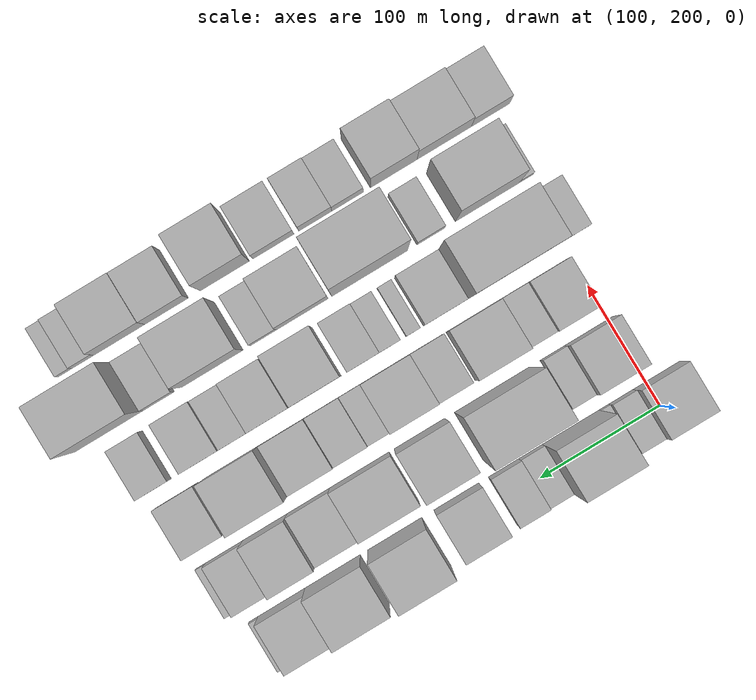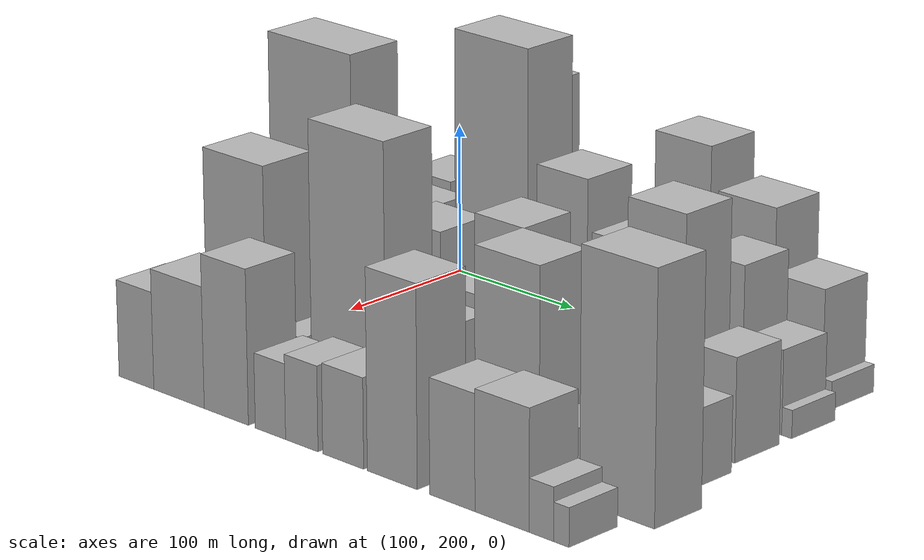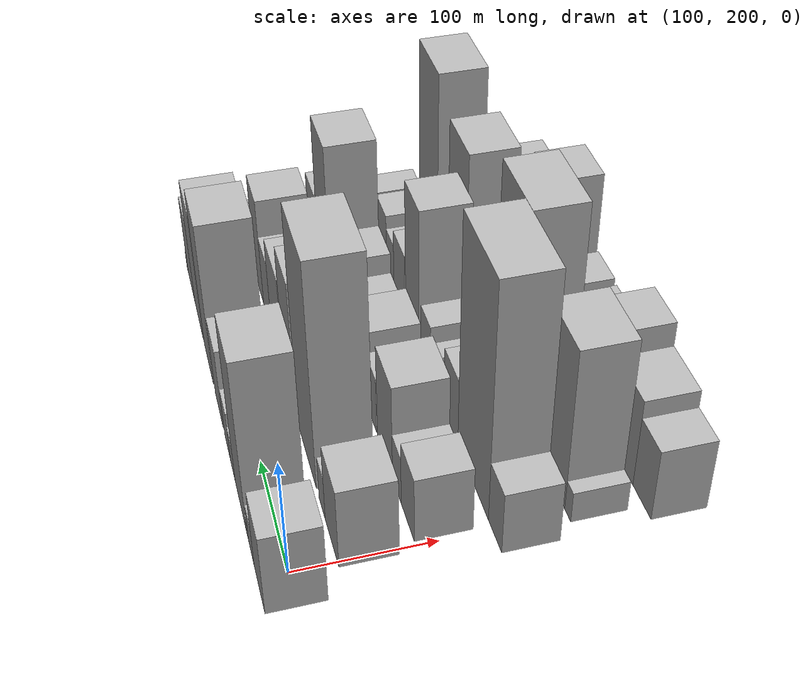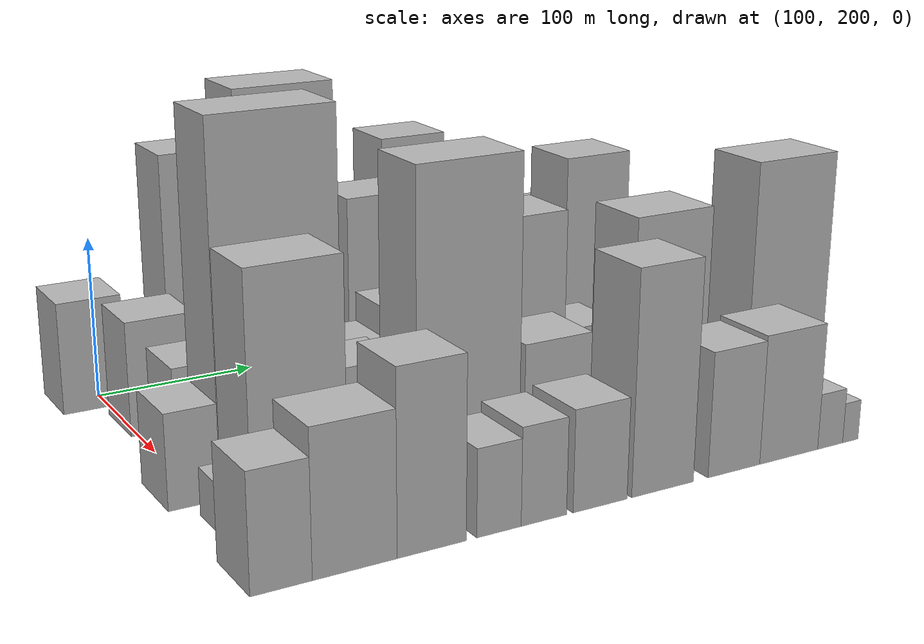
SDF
<sdf version="1.6">
 <world name="default">
  <model name="building_29">
   <static>1</static>
   <pose>100.0000 191.5343 0 0.000000 0.000000 0.000000</pose>
   <link name="link">
    <pose>0 0 34.50 0 0 0</pose>
    <collision name="collision"><geometry><box><size>40.0000 39.0017 69.0000</size></box></geometry></collision>
    <visual name="visual">
     <cast_shadows>0</cast_shadows>
     <geometry><box><size>40.0000 39.0017 69.0000</size></box></geometry>
     <material>
      <script>
       <uri>model://HANNAS_wall/materials/scripts</uri>
       <uri>model://HANNAS_wall/materials/textures</uri>
       <name>vrc/HANNAS_wall</name>
      </script>
     </material>
    </visual>
   </link>
  </model>
  <model name="building_30">
   <static>1</static>
   <pose>100.0000 221.0923 0 0.000000 0.000000 0.000000</pose>
   <link name="link">
    <pose>0 0 18.00 0 0 0</pose>
    <collision name="collision"><geometry><box><size>40.0000 20.1144 36.0000</size></box></geometry></collision>
    <visual name="visual">
     <cast_shadows>0</cast_shadows>
     <geometry><box><size>40.0000 20.1144 36.0000</size></box></geometry>
     <material>
      <script>
       <uri>model://HANNAS_wall/materials/scripts</uri>
       <uri>model://HANNAS_wall/materials/textures</uri>
       <name>vrc/HANNAS_wall</name>
      </script>
     </material>
    </visual>
   </link>
  </model>
  <model name="building_31">
   <static>1</static>
   <pose>100.0000 235.1445 0 0.000000 0.000000 0.000000</pose>
   <link name="link">
    <pose>0 0 9.00 0 0 0</pose>
    <collision name="collision"><geometry><box><size>40.0000 7.9899 18.0000</size></box></geometry></collision>
    <visual name="visual">
     <cast_shadows>0</cast_shadows>
     <geometry><box><size>40.0000 7.9899 18.0000</size></box></geometry>
     <material>
      <script>
       <uri>model://HANNAS_wall/materials/scripts</uri>
       <uri>model://HANNAS_wall/materials/textures</uri>
       <name>vrc/HANNAS_wall</name>
      </script>
     </material>
    </visual>
   </link>
  </model>
  <model name="building_32">
   <static>1</static>
   <pose>100.0000 262.7844 0 0.000000 0.000000 0.000000</pose>
   <link name="link">
    <pose>0 0 75.00 0 0 0</pose>
    <collision name="collision"><geometry><box><size>40.0000 47.2899 150.0000</size></box></geometry></collision>
    <visual name="visual">
     <cast_shadows>0</cast_shadows>
     <geometry><box><size>40.0000 47.2899 150.0000</size></box></geometry>
     <material>
      <script>
       <uri>model://HANNAS_wall/materials/scripts</uri>
       <uri>model://HANNAS_wall/materials/textures</uri>
       <name>vrc/HANNAS_wall</name>
      </script>
     </material>
    </visual>
   </link>
  </model>
  <model name="building_33">
   <static>1</static>
   <pose>100.0000 296.3072 0 0.000000 0.000000 0.000000</pose>
   <link name="link">
    <pose>0 0 16.50 0 0 0</pose>
    <collision name="collision"><geometry><box><size>40.0000 19.7557 33.0000</size></box></geometry></collision>
    <visual name="visual">
     <cast_shadows>0</cast_shadows>
     <geometry><box><size>40.0000 19.7557 33.0000</size></box></geometry>
     <material>
      <script>
       <uri>model://HANNAS_wall/materials/scripts</uri>
       <uri>model://HANNAS_wall/materials/textures</uri>
       <name>vrc/HANNAS_wall</name>
      </script>
     </material>
    </visual>
   </link>
  </model>
  <model name="building_34">
   <static>1</static>
   <pose>100.0000 318.8249 0 0.000000 0.000000 0.000000</pose>
   <link name="link">
    <pose>0 0 22.50 0 0 0</pose>
    <collision name="collision"><geometry><box><size>40.0000 25.2797 45.0000</size></box></geometry></collision>
    <visual name="visual">
     <cast_shadows>0</cast_shadows>
     <geometry><box><size>40.0000 25.2797 45.0000</size></box></geometry>
     <material>
      <script>
       <uri>model://HANNAS_wall/materials/scripts</uri>
       <uri>model://HANNAS_wall/materials/textures</uri>
       <name>vrc/HANNAS_wall</name>
      </script>
     </material>
    </visual>
   </link>
  </model>
  <model name="building_35">
   <static>1</static>
   <pose>100.0000 358.1424 0 0.000000 0.000000 0.000000</pose>
   <link name="link">
    <pose>0 0 36.00 0 0 0</pose>
    <collision name="collision"><geometry><box><size>40.0000 37.3553 72.0000</size></box></geometry></collision>
    <visual name="visual">
     <cast_shadows>0</cast_shadows>
     <geometry><box><size>40.0000 37.3553 72.0000</size></box></geometry>
     <material>
      <script>
       <uri>model://HANNAS_wall/materials/scripts</uri>
       <uri>model://HANNAS_wall/materials/textures</uri>
       <name>vrc/HANNAS_wall</name>
      </script>
     </material>
    </visual>
   </link>
  </model>
  <model name="building_36">
   <static>1</static>
   <pose>100.0000 409.5128 0 0.000000 0.000000 0.000000</pose>
   <link name="link">
    <pose>0 0 72.00 0 0 0</pose>
    <collision name="collision"><geometry><box><size>40.0000 45.3855 144.0000</size></box></geometry></collision>
    <visual name="visual">
     <cast_shadows>0</cast_shadows>
     <geometry><box><size>40.0000 45.3855 144.0000</size></box></geometry>
     <material>
      <script>
       <uri>model://HANNAS_wall/materials/scripts</uri>
       <uri>model://HANNAS_wall/materials/textures</uri>
       <name>vrc/HANNAS_wall</name>
      </script>
     </material>
    </visual>
   </link>
  </model>
  <model name="building_37">
   <static>1</static>
   <pose>100.0000 461.2926 0 0.000000 0.000000 0.000000</pose>
   <link name="link">
    <pose>0 0 58.50 0 0 0</pose>
    <collision name="collision"><geometry><box><size>40.0000 46.1740 117.0000</size></box></geometry></collision>
    <visual name="visual">
     <cast_shadows>0</cast_shadows>
     <geometry><box><size>40.0000 46.1740 117.0000</size></box></geometry>
     <material>
      <script>
       <uri>model://HANNAS_wall/materials/scripts</uri>
       <uri>model://HANNAS_wall/materials/textures</uri>
       <name>vrc/HANNAS_wall</name>
      </script>
     </material>
    </visual>
   </link>
  </model>
  <model name="building_38">
   <static>1</static>
   <pose>100.0000 503.9685 0 0.000000 0.000000 0.000000</pose>
   <link name="link">
    <pose>0 0 37.50 0 0 0</pose>
    <collision name="collision"><geometry><box><size>40.0000 39.1779 75.0000</size></box></geometry></collision>
    <visual name="visual">
     <cast_shadows>0</cast_shadows>
     <geometry><box><size>40.0000 39.1779 75.0000</size></box></geometry>
     <material>
      <script>
       <uri>model://HANNAS_wall/materials/scripts</uri>
       <uri>model://HANNAS_wall/materials/textures</uri>
       <name>vrc/HANNAS_wall</name>
      </script>
     </material>
    </visual>
   </link>
  </model>
  <model name="building_39">
   <static>1</static>
   <pose>100.0000 527.1681 0 0.000000 0.000000 0.000000</pose>
   <link name="link">
    <pose>0 0 9.00 0 0 0</pose>
    <collision name="collision"><geometry><box><size>40.0000 7.2214 18.0000</size></box></geometry></collision>
    <visual name="visual">
     <cast_shadows>0</cast_shadows>
     <geometry><box><size>40.0000 7.2214 18.0000</size></box></geometry>
     <material>
      <script>
       <uri>model://HANNAS_wall/materials/scripts</uri>
       <uri>model://HANNAS_wall/materials/textures</uri>
       <name>vrc/HANNAS_wall</name>
      </script>
     </material>
    </visual>
   </link>
  </model>
  <model name="building_81">
   <static>1</static>
   <pose>152.0000 216.3710 0 0.000000 0.000000 0.000000</pose>
   <link name="link">
    <pose>0 0 34.50 0 0 0</pose>
    <collision name="collision"><geometry><box><size>40.0000 41.2310 69.0000</size></box></geometry></collision>
    <visual name="visual">
     <cast_shadows>0</cast_shadows>
     <geometry><box><size>40.0000 41.2310 69.0000</size></box></geometry>
     <material>
      <script>
       <uri>model://HANNAS_wall/materials/scripts</uri>
       <uri>model://HANNAS_wall/materials/textures</uri>
       <name>vrc/HANNAS_wall</name>
      </script>
     </material>
    </visual>
   </link>
  </model>
  <model name="building_82">
   <static>1</static>
   <pose>152.0000 246.8909 0 0.000000 0.000000 0.000000</pose>
   <link name="link">
    <pose>0 0 19.50 0 0 0</pose>
    <collision name="collision"><geometry><box><size>40.0000 19.8089 39.0000</size></box></geometry></collision>
    <visual name="visual">
     <cast_shadows>0</cast_shadows>
     <geometry><box><size>40.0000 19.8089 39.0000</size></box></geometry>
     <material>
      <script>
       <uri>model://HANNAS_wall/materials/scripts</uri>
       <uri>model://HANNAS_wall/materials/textures</uri>
       <name>vrc/HANNAS_wall</name>
      </script>
     </material>
    </visual>
   </link>
  </model>
  <model name="building_83">
   <static>1</static>
   <pose>152.0000 297.0358 0 0.000000 0.000000 0.000000</pose>
   <link name="link">
    <pose>0 0 97.50 0 0 0</pose>
    <collision name="collision"><geometry><box><size>40.0000 62.4808 195.0000</size></box></geometry></collision>
    <visual name="visual">
     <cast_shadows>0</cast_shadows>
     <geometry><box><size>40.0000 62.4808 195.0000</size></box></geometry>
     <material>
      <script>
       <uri>model://HANNAS_wall/materials/scripts</uri>
       <uri>model://HANNAS_wall/materials/textures</uri>
       <name>vrc/HANNAS_wall</name>
      </script>
     </material>
    </visual>
   </link>
  </model>
  <model name="building_84">
   <static>1</static>
   <pose>152.0000 357.4031 0 0.000000 0.000000 0.000000</pose>
   <link name="link">
    <pose>0 0 61.50 0 0 0</pose>
    <collision name="collision"><geometry><box><size>40.0000 42.2539 123.0000</size></box></geometry></collision>
    <visual name="visual">
     <cast_shadows>0</cast_shadows>
     <geometry><box><size>40.0000 42.2539 123.0000</size></box></geometry>
     <material>
      <script>
       <uri>model://HANNAS_wall/materials/scripts</uri>
       <uri>model://HANNAS_wall/materials/textures</uri>
       <name>vrc/HANNAS_wall</name>
      </script>
     </material>
    </visual>
   </link>
  </model>
  <model name="building_85">
   <static>1</static>
   <pose>152.0000 407.4647 0 0.000000 0.000000 0.000000</pose>
   <link name="link">
    <pose>0 0 45.00 0 0 0</pose>
    <collision name="collision"><geometry><box><size>40.0000 49.8692 90.0000</size></box></geometry></collision>
    <visual name="visual">
     <cast_shadows>0</cast_shadows>
     <geometry><box><size>40.0000 49.8692 90.0000</size></box></geometry>
     <material>
      <script>
       <uri>model://HANNAS_wall/materials/scripts</uri>
       <uri>model://HANNAS_wall/materials/textures</uri>
       <name>vrc/HANNAS_wall</name>
      </script>
     </material>
    </visual>
   </link>
  </model>
  <model name="building_86">
   <static>1</static>
   <pose>152.0000 450.0559 0 0.000000 0.000000 0.000000</pose>
   <link name="link">
    <pose>0 0 33.00 0 0 0</pose>
    <collision name="collision"><geometry><box><size>40.0000 35.3134 66.0000</size></box></geometry></collision>
    <visual name="visual">
     <cast_shadows>0</cast_shadows>
     <geometry><box><size>40.0000 35.3134 66.0000</size></box></geometry>
     <material>
      <script>
       <uri>model://HANNAS_wall/materials/scripts</uri>
       <uri>model://HANNAS_wall/materials/textures</uri>
       <name>vrc/HANNAS_wall</name>
      </script>
     </material>
    </visual>
   </link>
  </model>
  <model name="building_87">
   <static>1</static>
   <pose>152.0000 486.1059 0 0.000000 0.000000 0.000000</pose>
   <link name="link">
    <pose>0 0 49.50 0 0 0</pose>
    <collision name="collision"><geometry><box><size>40.0000 36.7866 99.0000</size></box></geometry></collision>
    <visual name="visual">
     <cast_shadows>0</cast_shadows>
     <geometry><box><size>40.0000 36.7866 99.0000</size></box></geometry>
     <material>
      <script>
       <uri>model://HANNAS_wall/materials/scripts</uri>
       <uri>model://HANNAS_wall/materials/textures</uri>
       <name>vrc/HANNAS_wall</name>
      </script>
     </material>
    </visual>
   </link>
  </model>
  <model name="building_88">
   <static>1</static>
   <pose>152.0000 520.0396 0 0.000000 0.000000 0.000000</pose>
   <link name="link">
    <pose>0 0 27.00 0 0 0</pose>
    <collision name="collision"><geometry><box><size>40.0000 31.0809 54.0000</size></box></geometry></collision>
    <visual name="visual">
     <cast_shadows>0</cast_shadows>
     <geometry><box><size>40.0000 31.0809 54.0000</size></box></geometry>
     <material>
      <script>
       <uri>model://HANNAS_wall/materials/scripts</uri>
       <uri>model://HANNAS_wall/materials/textures</uri>
       <name>vrc/HANNAS_wall</name>
      </script>
     </material>
    </visual>
   </link>
  </model>
  <model name="building_89">
   <static>1</static>
   <pose>152.0000 539.5074 0 0.000000 0.000000 0.000000</pose>
   <link name="link">
    <pose>0 0 9.00 0 0 0</pose>
    <collision name="collision"><geometry><box><size>40.0000 7.8546 18.0000</size></box></geometry></collision>
    <visual name="visual">
     <cast_shadows>0</cast_shadows>
     <geometry><box><size>40.0000 7.8546 18.0000</size></box></geometry>
     <material>
      <script>
       <uri>model://HANNAS_wall/materials/scripts</uri>
       <uri>model://HANNAS_wall/materials/textures</uri>
       <name>vrc/HANNAS_wall</name>
      </script>
     </material>
    </visual>
   </link>
  </model>
  <model name="building_130">
   <static>1</static>
   <pose>204.0000 220.5026 0 0.000000 0.000000 0.000000</pose>
   <link name="link">
    <pose>0 0 28.50 0 0 0</pose>
    <collision name="collision"><geometry><box><size>40.0000 33.9036 57.0000</size></box></geometry></collision>
    <visual name="visual">
     <cast_shadows>0</cast_shadows>
     <geometry><box><size>40.0000 33.9036 57.0000</size></box></geometry>
     <material>
      <script>
       <uri>model://HANNAS_wall/materials/scripts</uri>
       <uri>model://HANNAS_wall/materials/textures</uri>
       <name>vrc/HANNAS_wall</name>
      </script>
     </material>
    </visual>
   </link>
  </model>
  <model name="building_131">
   <static>1</static>
   <pose>204.0000 249.2107 0 0.000000 0.000000 0.000000</pose>
   <link name="link">
    <pose>0 0 21.00 0 0 0</pose>
    <collision name="collision"><geometry><box><size>40.0000 23.5128 42.0000</size></box></geometry></collision>
    <visual name="visual">
     <cast_shadows>0</cast_shadows>
     <geometry><box><size>40.0000 23.5128 42.0000</size></box></geometry>
     <material>
      <script>
       <uri>model://HANNAS_wall/materials/scripts</uri>
       <uri>model://HANNAS_wall/materials/textures</uri>
       <name>vrc/HANNAS_wall</name>
      </script>
     </material>
    </visual>
   </link>
  </model>
  <model name="building_132">
   <static>1</static>
   <pose>204.0000 282.3592 0 0.000000 0.000000 0.000000</pose>
   <link name="link">
    <pose>0 0 42.00 0 0 0</pose>
    <collision name="collision"><geometry><box><size>40.0000 42.7842 84.0000</size></box></geometry></collision>
    <visual name="visual">
     <cast_shadows>0</cast_shadows>
     <geometry><box><size>40.0000 42.7842 84.0000</size></box></geometry>
     <material>
      <script>
       <uri>model://HANNAS_wall/materials/scripts</uri>
       <uri>model://HANNAS_wall/materials/textures</uri>
       <name>vrc/HANNAS_wall</name>
      </script>
     </material>
    </visual>
   </link>
  </model>
  <model name="building_133">
   <static>1</static>
   <pose>204.0000 320.8927 0 0.000000 0.000000 0.000000</pose>
   <link name="link">
    <pose>0 0 25.50 0 0 0</pose>
    <collision name="collision"><geometry><box><size>40.0000 28.2828 51.0000</size></box></geometry></collision>
    <visual name="visual">
     <cast_shadows>0</cast_shadows>
     <geometry><box><size>40.0000 28.2828 51.0000</size></box></geometry>
     <material>
      <script>
       <uri>model://HANNAS_wall/materials/scripts</uri>
       <uri>model://HANNAS_wall/materials/textures</uri>
       <name>vrc/HANNAS_wall</name>
      </script>
     </material>
    </visual>
   </link>
  </model>
  <model name="building_134">
   <static>1</static>
   <pose>204.0000 355.1964 0 0.000000 0.000000 0.000000</pose>
   <link name="link">
    <pose>0 0 34.50 0 0 0</pose>
    <collision name="collision"><geometry><box><size>40.0000 40.3246 69.0000</size></box></geometry></collision>
    <visual name="visual">
     <cast_shadows>0</cast_shadows>
     <geometry><box><size>40.0000 40.3246 69.0000</size></box></geometry>
     <material>
      <script>
       <uri>model://HANNAS_wall/materials/scripts</uri>
       <uri>model://HANNAS_wall/materials/textures</uri>
       <name>vrc/HANNAS_wall</name>
      </script>
     </material>
    </visual>
   </link>
  </model>
  <model name="building_135">
   <static>1</static>
   <pose>204.0000 384.3293 0 0.000000 0.000000 0.000000</pose>
   <link name="link">
    <pose>0 0 16.50 0 0 0</pose>
    <collision name="collision"><geometry><box><size>40.0000 17.9412 33.0000</size></box></geometry></collision>
    <visual name="visual">
     <cast_shadows>0</cast_shadows>
     <geometry><box><size>40.0000 17.9412 33.0000</size></box></geometry>
     <material>
      <script>
       <uri>model://HANNAS_wall/materials/scripts</uri>
       <uri>model://HANNAS_wall/materials/textures</uri>
       <name>vrc/HANNAS_wall</name>
      </script>
     </material>
    </visual>
   </link>
  </model>
  <model name="building_136">
   <static>1</static>
   <pose>204.0000 407.4024 0 0.000000 0.000000 0.000000</pose>
   <link name="link">
    <pose>0 0 24.00 0 0 0</pose>
    <collision name="collision"><geometry><box><size>40.0000 28.2051 48.0000</size></box></geometry></collision>
    <visual name="visual">
     <cast_shadows>0</cast_shadows>
     <geometry><box><size>40.0000 28.2051 48.0000</size></box></geometry>
     <material>
      <script>
       <uri>model://HANNAS_wall/materials/scripts</uri>
       <uri>model://HANNAS_wall/materials/textures</uri>
       <name>vrc/HANNAS_wall</name>
      </script>
     </material>
    </visual>
   </link>
  </model>
  <model name="building_137">
   <static>1</static>
   <pose>204.0000 439.9204 0 0.000000 0.000000 0.000000</pose>
   <link name="link">
    <pose>0 0 33.00 0 0 0</pose>
    <collision name="collision"><geometry><box><size>40.0000 36.8308 66.0000</size></box></geometry></collision>
    <visual name="visual">
     <cast_shadows>0</cast_shadows>
     <geometry><box><size>40.0000 36.8308 66.0000</size></box></geometry>
     <material>
      <script>
       <uri>model://HANNAS_wall/materials/scripts</uri>
       <uri>model://HANNAS_wall/materials/textures</uri>
       <name>vrc/HANNAS_wall</name>
      </script>
     </material>
    </visual>
   </link>
  </model>
  <model name="building_138">
   <static>1</static>
   <pose>204.0000 481.0618 0 0.000000 0.000000 0.000000</pose>
   <link name="link">
    <pose>0 0 72.00 0 0 0</pose>
    <collision name="collision"><geometry><box><size>40.0000 45.4520 144.0000</size></box></geometry></collision>
    <visual name="visual">
     <cast_shadows>0</cast_shadows>
     <geometry><box><size>40.0000 45.4520 144.0000</size></box></geometry>
     <material>
      <script>
       <uri>model://HANNAS_wall/materials/scripts</uri>
       <uri>model://HANNAS_wall/materials/textures</uri>
       <name>vrc/HANNAS_wall</name>
      </script>
     </material>
    </visual>
   </link>
  </model>
  <model name="building_139">
   <static>1</static>
   <pose>204.0000 527.3427 0 0.000000 0.000000 0.000000</pose>
   <link name="link">
    <pose>0 0 33.00 0 0 0</pose>
    <collision name="collision"><geometry><box><size>40.0000 33.1098 66.0000</size></box></geometry></collision>
    <visual name="visual">
     <cast_shadows>0</cast_shadows>
     <geometry><box><size>40.0000 33.1098 66.0000</size></box></geometry>
     <material>
      <script>
       <uri>model://HANNAS_wall/materials/scripts</uri>
       <uri>model://HANNAS_wall/materials/textures</uri>
       <name>vrc/HANNAS_wall</name>
      </script>
     </material>
    </visual>
   </link>
  </model>
  <model name="building_180">
   <static>1</static>
   <pose>256.0000 194.0044 0 0.000000 0.000000 0.000000</pose>
   <link name="link">
    <pose>0 0 27.00 0 0 0</pose>
    <collision name="collision"><geometry><box><size>40.0000 28.8118 54.0000</size></box></geometry></collision>
    <visual name="visual">
     <cast_shadows>0</cast_shadows>
     <geometry><box><size>40.0000 28.8118 54.0000</size></box></geometry>
     <material>
      <script>
       <uri>model://HANNAS_wall/materials/scripts</uri>
       <uri>model://HANNAS_wall/materials/textures</uri>
       <name>vrc/HANNAS_wall</name>
      </script>
     </material>
    </visual>
   </link>
  </model>
  <model name="building_181">
   <static>1</static>
   <pose>256.0000 244.2311 0 0.000000 0.000000 0.000000</pose>
   <link name="link">
    <pose>0 0 102.00 0 0 0</pose>
    <collision name="collision"><geometry><box><size>40.0000 71.6417 204.0000</size></box></geometry></collision>
    <visual name="visual">
     <cast_shadows>0</cast_shadows>
     <geometry><box><size>40.0000 71.6417 204.0000</size></box></geometry>
     <material>
      <script>
       <uri>model://HANNAS_wall/materials/scripts</uri>
       <uri>model://HANNAS_wall/materials/textures</uri>
       <name>vrc/HANNAS_wall</name>
      </script>
     </material>
    </visual>
   </link>
  </model>
  <model name="building_182">
   <static>1</static>
   <pose>256.0000 297.6205 0 0.000000 0.000000 0.000000</pose>
   <link name="link">
    <pose>0 0 30.00 0 0 0</pose>
    <collision name="collision"><geometry><box><size>40.0000 35.1369 60.0000</size></box></geometry></collision>
    <visual name="visual">
     <cast_shadows>0</cast_shadows>
     <geometry><box><size>40.0000 35.1369 60.0000</size></box></geometry>
     <material>
      <script>
       <uri>model://HANNAS_wall/materials/scripts</uri>
       <uri>model://HANNAS_wall/materials/textures</uri>
       <name>vrc/HANNAS_wall</name>
      </script>
     </material>
    </visual>
   </link>
  </model>
  <model name="building_183">
   <static>1</static>
   <pose>256.0000 323.9845 0 0.000000 0.000000 0.000000</pose>
   <link name="link">
    <pose>0 0 12.00 0 0 0</pose>
    <collision name="collision"><geometry><box><size>40.0000 11.5911 24.0000</size></box></geometry></collision>
    <visual name="visual">
     <cast_shadows>0</cast_shadows>
     <geometry><box><size>40.0000 11.5911 24.0000</size></box></geometry>
     <material>
      <script>
       <uri>model://HANNAS_wall/materials/scripts</uri>
       <uri>model://HANNAS_wall/materials/textures</uri>
       <name>vrc/HANNAS_wall</name>
      </script>
     </material>
    </visual>
   </link>
  </model>
  <model name="building_184">
   <static>1</static>
   <pose>256.0000 343.4936 0 0.000000 0.000000 0.000000</pose>
   <link name="link">
    <pose>0 0 16.50 0 0 0</pose>
    <collision name="collision"><geometry><box><size>40.0000 17.4272 33.0000</size></box></geometry></collision>
    <visual name="visual">
     <cast_shadows>0</cast_shadows>
     <geometry><box><size>40.0000 17.4272 33.0000</size></box></geometry>
     <material>
      <script>
       <uri>model://HANNAS_wall/materials/scripts</uri>
       <uri>model://HANNAS_wall/materials/textures</uri>
       <name>vrc/HANNAS_wall</name>
      </script>
     </material>
    </visual>
   </link>
  </model>
  <model name="building_185">
   <static>1</static>
   <pose>256.0000 365.4815 0 0.000000 0.000000 0.000000</pose>
   <link name="link">
    <pose>0 0 24.00 0 0 0</pose>
    <collision name="collision"><geometry><box><size>40.0000 26.5486 48.0000</size></box></geometry></collision>
    <visual name="visual">
     <cast_shadows>0</cast_shadows>
     <geometry><box><size>40.0000 26.5486 48.0000</size></box></geometry>
     <material>
      <script>
       <uri>model://HANNAS_wall/materials/scripts</uri>
       <uri>model://HANNAS_wall/materials/textures</uri>
       <name>vrc/HANNAS_wall</name>
      </script>
     </material>
    </visual>
   </link>
  </model>
  <model name="building_186">
   <static>1</static>
   <pose>256.0000 403.6799 0 0.000000 0.000000 0.000000</pose>
   <link name="link">
    <pose>0 0 64.50 0 0 0</pose>
    <collision name="collision"><geometry><box><size>40.0000 39.8481 129.0000</size></box></geometry></collision>
    <visual name="visual">
     <cast_shadows>0</cast_shadows>
     <geometry><box><size>40.0000 39.8481 129.0000</size></box></geometry>
     <material>
      <script>
       <uri>model://HANNAS_wall/materials/scripts</uri>
       <uri>model://HANNAS_wall/materials/textures</uri>
       <name>vrc/HANNAS_wall</name>
      </script>
     </material>
    </visual>
   </link>
  </model>
  <model name="building_187">
   <static>1</static>
   <pose>256.0000 443.5906 0 0.000000 0.000000 0.000000</pose>
   <link name="link">
    <pose>0 0 28.50 0 0 0</pose>
    <collision name="collision"><geometry><box><size>40.0000 33.9734 57.0000</size></box></geometry></collision>
    <visual name="visual">
     <cast_shadows>0</cast_shadows>
     <geometry><box><size>40.0000 33.9734 57.0000</size></box></geometry>
     <material>
      <script>
       <uri>model://HANNAS_wall/materials/scripts</uri>
       <uri>model://HANNAS_wall/materials/textures</uri>
       <name>vrc/HANNAS_wall</name>
      </script>
     </material>
    </visual>
   </link>
  </model>
  <model name="building_188">
   <static>1</static>
   <pose>256.0000 472.3663 0 0.000000 0.000000 0.000000</pose>
   <link name="link">
    <pose>0 0 21.00 0 0 0</pose>
    <collision name="collision"><geometry><box><size>40.0000 23.5779 42.0000</size></box></geometry></collision>
    <visual name="visual">
     <cast_shadows>0</cast_shadows>
     <geometry><box><size>40.0000 23.5779 42.0000</size></box></geometry>
     <material>
      <script>
       <uri>model://HANNAS_wall/materials/scripts</uri>
       <uri>model://HANNAS_wall/materials/textures</uri>
       <name>vrc/HANNAS_wall</name>
      </script>
     </material>
    </visual>
   </link>
  </model>
  <model name="building_189">
   <static>1</static>
   <pose>256.0000 499.7709 0 0.000000 0.000000 0.000000</pose>
   <link name="link">
    <pose>0 0 27.00 0 0 0</pose>
    <collision name="collision"><geometry><box><size>40.0000 31.2312 54.0000</size></box></geometry></collision>
    <visual name="visual">
     <cast_shadows>0</cast_shadows>
     <geometry><box><size>40.0000 31.2312 54.0000</size></box></geometry>
     <material>
      <script>
       <uri>model://HANNAS_wall/materials/scripts</uri>
       <uri>model://HANNAS_wall/materials/textures</uri>
       <name>vrc/HANNAS_wall</name>
      </script>
     </material>
    </visual>
   </link>
  </model>
  <model name="building_190">
   <static>1</static>
   <pose>256.0000 538.5346 0 0.000000 0.000000 0.000000</pose>
   <link name="link">
    <pose>0 0 24.00 0 0 0</pose>
    <collision name="collision"><geometry><box><size>40.0000 26.2963 48.0000</size></box></geometry></collision>
    <visual name="visual">
     <cast_shadows>0</cast_shadows>
     <geometry><box><size>40.0000 26.2963 48.0000</size></box></geometry>
     <material>
      <script>
       <uri>model://HANNAS_wall/materials/scripts</uri>
       <uri>model://HANNAS_wall/materials/textures</uri>
       <name>vrc/HANNAS_wall</name>
      </script>
     </material>
    </visual>
   </link>
  </model>
  <model name="building_233">
   <static>1</static>
   <pose>308.0000 198.3933 0 0.000000 0.000000 0.000000</pose>
   <link name="link">
    <pose>0 0 13.50 0 0 0</pose>
    <collision name="collision"><geometry><box><size>40.0000 11.6993 27.0000</size></box></geometry></collision>
    <visual name="visual">
     <cast_shadows>0</cast_shadows>
     <geometry><box><size>40.0000 11.6993 27.0000</size></box></geometry>
     <material>
      <script>
       <uri>model://HANNAS_wall/materials/scripts</uri>
       <uri>model://HANNAS_wall/materials/textures</uri>
       <name>vrc/HANNAS_wall</name>
      </script>
     </material>
    </visual>
   </link>
  </model>
  <model name="building_234">
   <static>1</static>
   <pose>308.0000 230.7272 0 0.000000 0.000000 0.000000</pose>
   <link name="link">
    <pose>0 0 70.50 0 0 0</pose>
    <collision name="collision"><geometry><box><size>40.0000 52.9686 141.0000</size></box></geometry></collision>
    <visual name="visual">
     <cast_shadows>0</cast_shadows>
     <geometry><box><size>40.0000 52.9686 141.0000</size></box></geometry>
     <material>
      <script>
       <uri>model://HANNAS_wall/materials/scripts</uri>
       <uri>model://HANNAS_wall/materials/textures</uri>
       <name>vrc/HANNAS_wall</name>
      </script>
     </material>
    </visual>
   </link>
  </model>
  <model name="building_235">
   <static>1</static>
   <pose>308.0000 277.7159 0 0.000000 0.000000 0.000000</pose>
   <link name="link">
    <pose>0 0 19.50 0 0 0</pose>
    <collision name="collision"><geometry><box><size>40.0000 23.0088 39.0000</size></box></geometry></collision>
    <visual name="visual">
     <cast_shadows>0</cast_shadows>
     <geometry><box><size>40.0000 23.0088 39.0000</size></box></geometry>
     <material>
      <script>
       <uri>model://HANNAS_wall/materials/scripts</uri>
       <uri>model://HANNAS_wall/materials/textures</uri>
       <name>vrc/HANNAS_wall</name>
      </script>
     </material>
    </visual>
   </link>
  </model>
  <model name="building_236">
   <static>1</static>
   <pose>308.0000 328.7182 0 0.000000 0.000000 0.000000</pose>
   <link name="link">
    <pose>0 0 90.00 0 0 0</pose>
    <collision name="collision"><geometry><box><size>40.0000 62.9957 180.0000</size></box></geometry></collision>
    <visual name="visual">
     <cast_shadows>0</cast_shadows>
     <geometry><box><size>40.0000 62.9957 180.0000</size></box></geometry>
     <material>
      <script>
       <uri>model://HANNAS_wall/materials/scripts</uri>
       <uri>model://HANNAS_wall/materials/textures</uri>
       <name>vrc/HANNAS_wall</name>
      </script>
     </material>
    </visual>
   </link>
  </model>
  <model name="building_237">
   <static>1</static>
   <pose>308.0000 384.7673 0 0.000000 0.000000 0.000000</pose>
   <link name="link">
    <pose>0 0 37.50 0 0 0</pose>
    <collision name="collision"><geometry><box><size>40.0000 43.1025 75.0000</size></box></geometry></collision>
    <visual name="visual">
     <cast_shadows>0</cast_shadows>
     <geometry><box><size>40.0000 43.1025 75.0000</size></box></geometry>
     <material>
      <script>
       <uri>model://HANNAS_wall/materials/scripts</uri>
       <uri>model://HANNAS_wall/materials/textures</uri>
       <name>vrc/HANNAS_wall</name>
      </script>
     </material>
    </visual>
   </link>
  </model>
  <model name="building_238">
   <static>1</static>
   <pose>308.0000 417.1842 0 0.000000 0.000000 0.000000</pose>
   <link name="link">
    <pose>0 0 19.50 0 0 0</pose>
    <collision name="collision"><geometry><box><size>40.0000 21.7313 39.0000</size></box></geometry></collision>
    <visual name="visual">
     <cast_shadows>0</cast_shadows>
     <geometry><box><size>40.0000 21.7313 39.0000</size></box></geometry>
     <material>
      <script>
       <uri>model://HANNAS_wall/materials/scripts</uri>
       <uri>model://HANNAS_wall/materials/textures</uri>
       <name>vrc/HANNAS_wall</name>
      </script>
     </material>
    </visual>
   </link>
  </model>
  <model name="building_239">
   <static>1</static>
   <pose>308.0000 459.6906 0 0.000000 0.000000 0.000000</pose>
   <link name="link">
    <pose>0 0 67.50 0 0 0</pose>
    <collision name="collision"><geometry><box><size>40.0000 51.2815 135.0000</size></box></geometry></collision>
    <visual name="visual">
     <cast_shadows>0</cast_shadows>
     <geometry><box><size>40.0000 51.2815 135.0000</size></box></geometry>
     <material>
      <script>
       <uri>model://HANNAS_wall/materials/scripts</uri>
       <uri>model://HANNAS_wall/materials/textures</uri>
       <name>vrc/HANNAS_wall</name>
      </script>
     </material>
    </visual>
   </link>
  </model>
  <model name="building_240">
   <static>1</static>
   <pose>308.0000 504.1638 0 0.000000 0.000000 0.000000</pose>
   <link name="link">
    <pose>0 0 22.50 0 0 0</pose>
    <collision name="collision"><geometry><box><size>40.0000 25.6649 45.0000</size></box></geometry></collision>
    <visual name="visual">
     <cast_shadows>0</cast_shadows>
     <geometry><box><size>40.0000 25.6649 45.0000</size></box></geometry>
     <material>
      <script>
       <uri>model://HANNAS_wall/materials/scripts</uri>
       <uri>model://HANNAS_wall/materials/textures</uri>
       <name>vrc/HANNAS_wall</name>
      </script>
     </material>
    </visual>
   </link>
  </model>
  <model name="building_241">
   <static>1</static>
   <pose>308.0000 545.6120 0 0.000000 0.000000 0.000000</pose>
   <link name="link">
    <pose>0 0 78.00 0 0 0</pose>
    <collision name="collision"><geometry><box><size>40.0000 57.2314 156.0000</size></box></geometry></collision>
    <visual name="visual">
     <cast_shadows>0</cast_shadows>
     <geometry><box><size>40.0000 57.2314 156.0000</size></box></geometry>
     <material>
      <script>
       <uri>model://HANNAS_wall/materials/scripts</uri>
       <uri>model://HANNAS_wall/materials/textures</uri>
       <name>vrc/HANNAS_wall</name>
      </script>
     </material>
    </visual>
   </link>
  </model>
  <model name="building_284">
   <static>1</static>
   <pose>360.0000 196.5166 0 0.000000 0.000000 0.000000</pose>
   <link name="link">
    <pose>0 0 31.50 0 0 0</pose>
    <collision name="collision"><geometry><box><size>40.0000 31.7865 63.0000</size></box></geometry></collision>
    <visual name="visual">
     <cast_shadows>0</cast_shadows>
     <geometry><box><size>40.0000 31.7865 63.0000</size></box></geometry>
     <material>
      <script>
       <uri>model://HANNAS_wall/materials/scripts</uri>
       <uri>model://HANNAS_wall/materials/textures</uri>
       <name>vrc/HANNAS_wall</name>
      </script>
     </material>
    </visual>
   </link>
  </model>
  <model name="building_285">
   <static>1</static>
   <pose>360.0000 235.0598 0 0.000000 0.000000 0.000000</pose>
   <link name="link">
    <pose>0 0 39.00 0 0 0</pose>
    <collision name="collision"><geometry><box><size>40.0000 45.3000 78.0000</size></box></geometry></collision>
    <visual name="visual">
     <cast_shadows>0</cast_shadows>
     <geometry><box><size>40.0000 45.3000 78.0000</size></box></geometry>
     <material>
      <script>
       <uri>model://HANNAS_wall/materials/scripts</uri>
       <uri>model://HANNAS_wall/materials/textures</uri>
       <name>vrc/HANNAS_wall</name>
      </script>
     </material>
    </visual>
   </link>
  </model>
  <model name="building_286">
   <static>1</static>
   <pose>360.0000 277.1307 0 0.000000 0.000000 0.000000</pose>
   <link name="link">
    <pose>0 0 49.50 0 0 0</pose>
    <collision name="collision"><geometry><box><size>40.0000 38.8417 99.0000</size></box></geometry></collision>
    <visual name="visual">
     <cast_shadows>0</cast_shadows>
     <geometry><box><size>40.0000 38.8417 99.0000</size></box></geometry>
     <material>
      <script>
       <uri>model://HANNAS_wall/materials/scripts</uri>
       <uri>model://HANNAS_wall/materials/textures</uri>
       <name>vrc/HANNAS_wall</name>
      </script>
     </material>
    </visual>
   </link>
  </model>
  <model name="building_287">
   <static>1</static>
   <pose>360.0000 315.6087 0 0.000000 0.000000 0.000000</pose>
   <link name="link">
    <pose>0 0 24.00 0 0 0</pose>
    <collision name="collision"><geometry><box><size>40.0000 26.1142 48.0000</size></box></geometry></collision>
    <visual name="visual">
     <cast_shadows>0</cast_shadows>
     <geometry><box><size>40.0000 26.1142 48.0000</size></box></geometry>
     <material>
      <script>
       <uri>model://HANNAS_wall/materials/scripts</uri>
       <uri>model://HANNAS_wall/materials/textures</uri>
       <name>vrc/HANNAS_wall</name>
      </script>
     </material>
    </visual>
   </link>
  </model>
  <model name="building_288">
   <static>1</static>
   <pose>360.0000 342.4471 0 0.000000 0.000000 0.000000</pose>
   <link name="link">
    <pose>0 0 27.00 0 0 0</pose>
    <collision name="collision"><geometry><box><size>40.0000 27.5626 54.0000</size></box></geometry></collision>
    <visual name="visual">
     <cast_shadows>0</cast_shadows>
     <geometry><box><size>40.0000 27.5626 54.0000</size></box></geometry>
     <material>
      <script>
       <uri>model://HANNAS_wall/materials/scripts</uri>
       <uri>model://HANNAS_wall/materials/textures</uri>
       <name>vrc/HANNAS_wall</name>
      </script>
     </material>
    </visual>
   </link>
  </model>
  <model name="building_289">
   <static>1</static>
   <pose>360.0000 377.3107 0 0.000000 0.000000 0.000000</pose>
   <link name="link">
    <pose>0 0 28.50 0 0 0</pose>
    <collision name="collision"><geometry><box><size>40.0000 34.1647 57.0000</size></box></geometry></collision>
    <visual name="visual">
     <cast_shadows>0</cast_shadows>
     <geometry><box><size>40.0000 34.1647 57.0000</size></box></geometry>
     <material>
      <script>
       <uri>model://HANNAS_wall/materials/scripts</uri>
       <uri>model://HANNAS_wall/materials/textures</uri>
       <name>vrc/HANNAS_wall</name>
      </script>
     </material>
    </visual>
   </link>
  </model>
  <model name="building_290">
   <static>1</static>
   <pose>360.0000 417.7964 0 0.000000 0.000000 0.000000</pose>
   <link name="link">
    <pose>0 0 63.00 0 0 0</pose>
    <collision name="collision"><geometry><box><size>40.0000 40.8066 126.0000</size></box></geometry></collision>
    <visual name="visual">
     <cast_shadows>0</cast_shadows>
     <geometry><box><size>40.0000 40.8066 126.0000</size></box></geometry>
     <material>
      <script>
       <uri>model://HANNAS_wall/materials/scripts</uri>
       <uri>model://HANNAS_wall/materials/textures</uri>
       <name>vrc/HANNAS_wall</name>
      </script>
     </material>
    </visual>
   </link>
  </model>
  <model name="building_291">
   <static>1</static>
   <pose>360.0000 466.2481 0 0.000000 0.000000 0.000000</pose>
   <link name="link">
    <pose>0 0 36.00 0 0 0</pose>
    <collision name="collision"><geometry><box><size>40.0000 36.0969 72.0000</size></box></geometry></collision>
    <visual name="visual">
     <cast_shadows>0</cast_shadows>
     <geometry><box><size>40.0000 36.0969 72.0000</size></box></geometry>
     <material>
      <script>
       <uri>model://HANNAS_wall/materials/scripts</uri>
       <uri>model://HANNAS_wall/materials/textures</uri>
       <name>vrc/HANNAS_wall</name>
      </script>
     </material>
    </visual>
   </link>
  </model>
  <model name="building_292">
   <static>1</static>
   <pose>360.0000 505.4151 0 0.000000 0.000000 0.000000</pose>
   <link name="link">
    <pose>0 0 37.50 0 0 0</pose>
    <collision name="collision"><geometry><box><size>40.0000 42.2370 75.0000</size></box></geometry></collision>
    <visual name="visual">
     <cast_shadows>0</cast_shadows>
     <geometry><box><size>40.0000 42.2370 75.0000</size></box></geometry>
     <material>
      <script>
       <uri>model://HANNAS_wall/materials/scripts</uri>
       <uri>model://HANNAS_wall/materials/textures</uri>
       <name>vrc/HANNAS_wall</name>
      </script>
     </material>
    </visual>
   </link>
  </model>
  <model name="building_293">
   <static>1</static>
   <pose>360.0000 535.9043 0 0.000000 0.000000 0.000000</pose>
   <link name="link">
    <pose>0 0 16.50 0 0 0</pose>
    <collision name="collision"><geometry><box><size>40.0000 18.7415 33.0000</size></box></geometry></collision>
    <visual name="visual">
     <cast_shadows>0</cast_shadows>
     <geometry><box><size>40.0000 18.7415 33.0000</size></box></geometry>
     <material>
      <script>
       <uri>model://HANNAS_wall/materials/scripts</uri>
       <uri>model://HANNAS_wall/materials/textures</uri>
       <name>vrc/HANNAS_wall</name>
      </script>
     </material>
    </visual>
   </link>
  </model>
  <model name="building_294">
   <static>1</static>
   <pose>360.0000 551.1533 0 0.000000 0.000000 0.000000</pose>
   <link name="link">
    <pose>0 0 12.00 0 0 0</pose>
    <collision name="collision"><geometry><box><size>40.0000 11.7565 24.0000</size></box></geometry></collision>
    <visual name="visual">
     <cast_shadows>0</cast_shadows>
     <geometry><box><size>40.0000 11.7565 24.0000</size></box></geometry>
     <material>
      <script>
       <uri>model://HANNAS_wall/materials/scripts</uri>
       <uri>model://HANNAS_wall/materials/textures</uri>
       <name>vrc/HANNAS_wall</name>
      </script>
     </material>
    </visual>
   </link>
  </model>
 </world>
</sdf>
